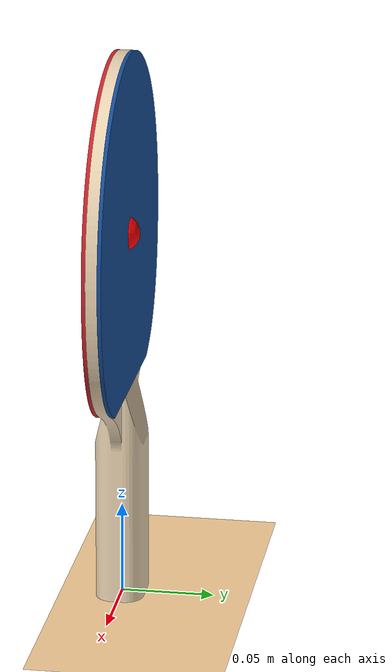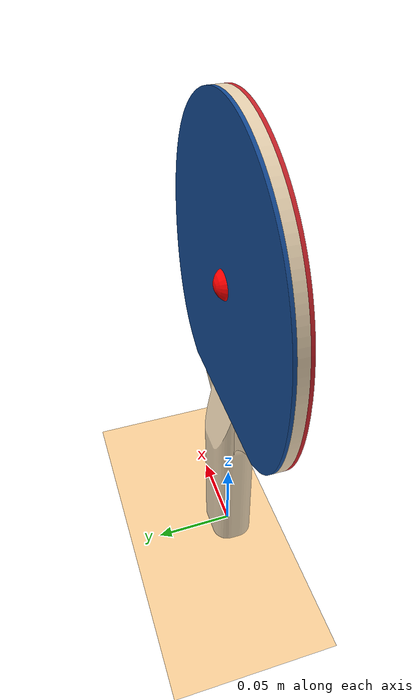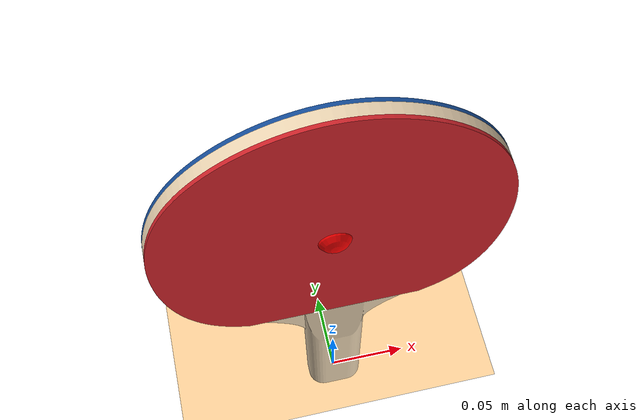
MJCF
<mujoco model="Racket">
    <compiler angle="radian" />

    <asset>
        <mesh name="top" file="meshes/top.stl" scale="0.001 0.001 0.001" />
        <mesh name="middle" file="meshes/middle.stl" scale="0.001 0.001 0.001" />
        <mesh name="bottom" file="meshes/bottom.stl" scale="0.001 0.001 0.001" />

        <material name="top_mat" rgba="0.8 0.137 0.165 1" />
        <material name="middle_mat" rgba="0.922 0.835 0.702 1" />
        <material name="bottom_mat" rgba="0.078 0.294 0.588 1" />
    </asset>

    <worldbody>
        <light directional="true" pos="-0.5 0.5 3" dir="0 0 -1" />

        <geom pos="0 0 0"
              size="1 1 1"
              type="plane"
              rgba="1 0.83 0.61 0.5" />

        <body name="middle"
              pos="-0.1630733413002845 0.3258592928275778 -0.05050159310968819"
              euler="1.5707963267948966 0.0 -0.0">

            <site name="attachment_site"
                  pos="0.16307331235065192 0.05 0.3258592928275779"
                  size="0.01"
                  type="sphere"
                  rgba="0 1 0 1"/>

            <site name="face"
                  pos="0.16307331235065192 0.25380692762763546 0.3258592928275779"
                  size="0.01"
                  type="sphere"
                  rgba="1 0 0 1"/>

            <geom name="middle_geom"
                  type="mesh"
                  mesh="middle"
                  material="middle_mat"
                  pos="0 0 0"
                  euler="0 0 0" />

            <inertial mass="0.14816677044860987"
                      pos="0.16307331235065192 0.2003367851938263 0.3258592928275779"
                      fullinertia="0.001004180925363665 0.00021069684849095812 0.0012095263144916426 -1.0723555120158289e-10 -1.4210857762985234e-18 1.5774472580186126e-18" />

            <body name="top"
                  pos="0.0 0.0 0.0"
                  euler="-0.0 0.0 -0.0">

                <geom name="top_geom"
                      type="mesh"
                      mesh="top"
                      material="top_mat"
                      pos="0 0 0"
                      euler="0 0 0" />

                <inertial mass="0.05096753924327075"
                          pos="0.16307326299448238 0.25380692762763546 0.3298592928275778"
                          fullinertia="0.00011430819974343753 0.00010950794209709063 0.00022378216348103303 2.6362840856352125e-10 8.851498822451413e-20 1.1519648082658485e-19" />
            </body>

            <body name="bottom"
                  pos="0.0 0.0 0.0"
                  euler="-0.0 0.0 -0.0">

                <geom name="bottom_geom"
                      type="mesh"
                      mesh="bottom"
                      material="bottom_mat"
                      pos="0 0 0"
                      euler="0 0 0" />

                <inertial mass="0.05096753924327077"
                          pos="0.16307326235065192 0.25380692762763546 0.32185929282757786"
                          fullinertia="0.0001143081997434384 0.00010950794209709205 0.00022378216348103172 2.636284089316521e-10 -8.063006448811514e-19 5.624298769768554e-19" />
            </body>

        </body>
    </worldbody>
</mujoco>
